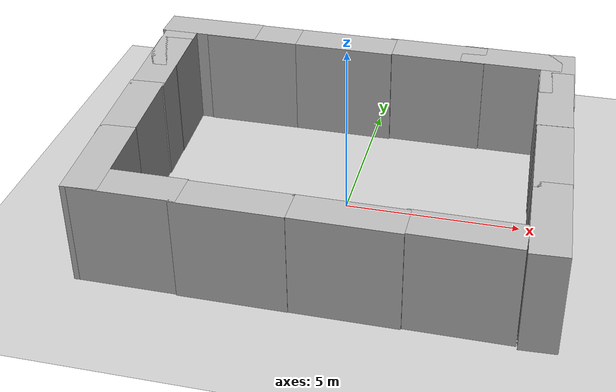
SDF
<sdf version="1.7">
 <world name="default">
  <light name="sun" type="directional">
   <pose>0 0 10 0 -0 0</pose>
   <diffuse>0.8 0.8 0.8 1</diffuse>
   <specular>0.2 0.2 0.2 1</specular>
   <attenuation>
    <range>1000</range>
    <constant>0.9</constant>
    <linear>0.01</linear>
    <quadratic>0.001</quadratic>
   </attenuation>
   <direction>-0.5 0.1 -0.9</direction>
   <spot><inner_angle>0</inner_angle><outer_angle>0</outer_angle><falloff>0</falloff></spot>
  </light>
  <model name="ground_plane">
   <static>1</static>
   <link name="link">
    <collision name="collision">
     <geometry><plane><normal>0 0 1</normal><size>100 100</size></plane></geometry>
     <surface><friction><ode><mu>100</mu><mu2>50</mu2></ode></friction></surface>
    </collision>
    <visual name="visual">
     <cast_shadows>0</cast_shadows>
     <geometry><plane><normal>0 0 1</normal><size>100 100</size></plane></geometry>
     <material>
      <script><uri>file://media/materials/scripts/gazebo.material</uri><name>Gazebo/Grey</name></script>
     </material>
    </visual>
   </link>
  </model>
  <gravity>0 0 -9.8</gravity>
  <magnetic_field>6e-06 2.3e-05 -4.2e-05</magnetic_field>
  <atmosphere type="adiabatic"/>
  <physics type="ode">
   <max_step_size>0.001</max_step_size>
   <real_time_factor>1</real_time_factor>
   <real_time_update_rate>1000</real_time_update_rate>
  </physics>
  <scene><ambient>0.4 0.4 0.4 1</ambient><background>0.7 0.7 0.7 1</background><shadows>1</shadows></scene>
  <spherical_coordinates>
   <surface_model>EARTH_WGS84</surface_model>
   <latitude_deg>0</latitude_deg>
   <longitude_deg>0</longitude_deg>
   <elevation>0</elevation>
   <heading_deg>0</heading_deg>
  </spherical_coordinates>
  <model name="brick_box_3x1x3">
   <static>1</static>
   <link name="chassis">
    <pose>0 0 1.5 0 -0 0</pose>
    <collision name="collision"><geometry><box><size>3 1 3</size></box></geometry></collision>
    <visual name="visual">
     <geometry><mesh><uri>model://brick_box_3x1x3/meshes/simple_box.dae</uri><scale>3 1 3</scale></mesh></geometry>
     <material>
      <script>
       <uri>model://brick_box_3x1x3/materials/scripts</uri>
       <uri>model://brick_box_3x1x3/materials/textures</uri>
       <name>BrickBox/Diffuse</name>
      </script>
     </material>
    </visual>
   </link>
   <pose>0.999896 -4.36214 0 0 -0 0</pose>
  </model>
  <model name="brick_box_3x1x3_clone">
   <static>1</static>
   <link name="chassis">
    <pose>0 0 1.5 0 -0 0</pose>
    <collision name="collision"><geometry><box><size>3 1 3</size></box></geometry></collision>
    <visual name="visual">
     <geometry><mesh><uri>model://brick_box_3x1x3/meshes/simple_box.dae</uri><scale>3 1 3</scale></mesh></geometry>
     <material>
      <script>
       <uri>model://brick_box_3x1x3/materials/scripts</uri>
       <uri>model://brick_box_3x1x3/materials/textures</uri>
       <name>BrickBox/Diffuse</name>
      </script>
     </material>
    </visual>
   </link>
   <pose>-1.93508 -4.37245 0 0 -0 0</pose>
  </model>
  <model name="brick_box_3x1x3_clone_0">
   <static>1</static>
   <link name="chassis">
    <pose>0 0 1.5 0 -0 0</pose>
    <collision name="collision"><geometry><box><size>3 1 3</size></box></geometry></collision>
    <visual name="visual">
     <geometry><mesh><uri>model://brick_box_3x1x3/meshes/simple_box.dae</uri><scale>3 1 3</scale></mesh></geometry>
     <material>
      <script>
       <uri>model://brick_box_3x1x3/materials/scripts</uri>
       <uri>model://brick_box_3x1x3/materials/textures</uri>
       <name>BrickBox/Diffuse</name>
      </script>
     </material>
    </visual>
   </link>
   <pose>-4.73271 -4.33758 0 0 -0 0</pose>
  </model>
  <model name="brick_box_3x1x3_clone_1">
   <static>1</static>
   <link name="chassis">
    <pose>0 0 1.5 0 -0 0</pose>
    <collision name="collision"><geometry><box><size>3 1 3</size></box></geometry></collision>
    <visual name="visual">
     <geometry><mesh><uri>model://brick_box_3x1x3/meshes/simple_box.dae</uri><scale>3 1 3</scale></mesh></geometry>
     <material>
      <script>
       <uri>model://brick_box_3x1x3/materials/scripts</uri>
       <uri>model://brick_box_3x1x3/materials/textures</uri>
       <name>BrickBox/Diffuse</name>
      </script>
     </material>
    </visual>
   </link>
   <pose>3.87327 -4.32497 0 0 -0 0</pose>
  </model>
  <model name="brick_box_3x1x3_clone_2">
   <static>1</static>
   <link name="chassis">
    <pose>0 0 1.5 0 -0 0</pose>
    <collision name="collision"><geometry><box><size>3 1 3</size></box></geometry></collision>
    <visual name="visual">
     <geometry><mesh><uri>model://brick_box_3x1x3/meshes/simple_box.dae</uri><scale>3 1 3</scale></mesh></geometry>
     <material>
      <script>
       <uri>model://brick_box_3x1x3/materials/scripts</uri>
       <uri>model://brick_box_3x1x3/materials/textures</uri>
       <name>BrickBox/Diffuse</name>
      </script>
     </material>
    </visual>
   </link>
   <pose>-0.989825 4.35374 0 0 -0 0</pose>
  </model>
  <model name="brick_box_3x1x3_clone_3">
   <static>1</static>
   <link name="chassis">
    <pose>0 0 1.5 0 -0 0</pose>
    <collision name="collision"><geometry><box><size>3 1 3</size></box></geometry></collision>
    <visual name="visual">
     <geometry><mesh><uri>model://brick_box_3x1x3/meshes/simple_box.dae</uri><scale>3 1 3</scale></mesh></geometry>
     <material>
      <script>
       <uri>model://brick_box_3x1x3/materials/scripts</uri>
       <uri>model://brick_box_3x1x3/materials/textures</uri>
       <name>BrickBox/Diffuse</name>
      </script>
     </material>
    </visual>
   </link>
   <pose>1.80548 4.39993 0 0 -0 0</pose>
  </model>
  <model name="brick_box_3x1x3_clone_4">
   <static>1</static>
   <link name="chassis">
    <pose>0 0 1.5 0 -0 0</pose>
    <collision name="collision"><geometry><box><size>3 1 3</size></box></geometry></collision>
    <visual name="visual">
     <geometry><mesh><uri>model://brick_box_3x1x3/meshes/simple_box.dae</uri><scale>3 1 3</scale></mesh></geometry>
     <material>
      <script>
       <uri>model://brick_box_3x1x3/materials/scripts</uri>
       <uri>model://brick_box_3x1x3/materials/textures</uri>
       <name>BrickBox/Diffuse</name>
      </script>
     </material>
    </visual>
   </link>
   <pose>4.08732 4.42645 0 0 -0 0</pose>
  </model>
  <model name="brick_box_3x1x3_clone_5">
   <static>1</static>
   <link name="chassis">
    <pose>0 0 1.5 0 -0 0</pose>
    <collision name="collision"><geometry><box><size>3 1 3</size></box></geometry></collision>
    <visual name="visual">
     <geometry><mesh><uri>model://brick_box_3x1x3/meshes/simple_box.dae</uri><scale>3 1 3</scale></mesh></geometry>
     <material>
      <script>
       <uri>model://brick_box_3x1x3/materials/scripts</uri>
       <uri>model://brick_box_3x1x3/materials/textures</uri>
       <name>BrickBox/Diffuse</name>
      </script>
     </material>
    </visual>
   </link>
   <pose>-3.82791 4.35381 0 0 -0 0</pose>
  </model>
  <model name="brick_box_3x1x3_clone_4_clone_clone">
   <static>1</static>
   <link name="chassis">
    <pose>0 0 1.5 0 -0 0</pose>
    <collision name="collision"><geometry><box><size>3 1 3</size></box></geometry></collision>
    <visual name="visual">
     <geometry><mesh><uri>model://brick_box_3x1x3/meshes/simple_box.dae</uri><scale>3 1 3</scale></mesh></geometry>
     <material>
      <script>
       <uri>model://brick_box_3x1x3/materials/scripts</uri>
       <uri>model://brick_box_3x1x3/materials/textures</uri>
       <name>BrickBox/Diffuse</name>
      </script>
     </material>
    </visual>
   </link>
   <pose>5.8327 -3.4101 0 0 0 -1.52218</pose>
  </model>
  <model name="brick_box_3x1x3_clone_4_clone_clone_0">
   <static>1</static>
   <link name="chassis">
    <pose>0 0 1.5 0 -0 0</pose>
    <collision name="collision"><geometry><box><size>3 1 3</size></box></geometry></collision>
    <visual name="visual">
     <geometry><mesh><uri>model://brick_box_3x1x3/meshes/simple_box.dae</uri><scale>3 1 3</scale></mesh></geometry>
     <material>
      <script>
       <uri>model://brick_box_3x1x3/materials/scripts</uri>
       <uri>model://brick_box_3x1x3/materials/textures</uri>
       <name>BrickBox/Diffuse</name>
      </script>
     </material>
    </visual>
   </link>
   <pose>5.70434 -0.667921 0 0 0 -1.52218</pose>
  </model>
  <model name="brick_box_3x1x3_clone_4_clone_clone_0_clone">
   <static>1</static>
   <link name="chassis">
    <pose>0 0 1.5 0 -0 0</pose>
    <collision name="collision"><geometry><box><size>3 1 3</size></box></geometry></collision>
    <visual name="visual">
     <geometry><mesh><uri>model://brick_box_3x1x3/meshes/simple_box.dae</uri><scale>3 1 3</scale></mesh></geometry>
     <material>
      <script>
       <uri>model://brick_box_3x1x3/materials/scripts</uri>
       <uri>model://brick_box_3x1x3/materials/textures</uri>
       <name>BrickBox/Diffuse</name>
      </script>
     </material>
    </visual>
   </link>
   <pose>5.53708 2.33134 0 0 0 -1.52218</pose>
  </model>
  <model name="brick_box_3x1x3_clone_4_clone_clone_0_clone_0">
   <static>1</static>
   <link name="chassis">
    <pose>0 0 1.5 0 -0 0</pose>
    <collision name="collision"><geometry><box><size>3 1 3</size></box></geometry></collision>
    <visual name="visual">
     <geometry><mesh><uri>model://brick_box_3x1x3/meshes/simple_box.dae</uri><scale>3 1 3</scale></mesh></geometry>
     <material>
      <script>
       <uri>model://brick_box_3x1x3/materials/scripts</uri>
       <uri>model://brick_box_3x1x3/materials/textures</uri>
       <name>BrickBox/Diffuse</name>
      </script>
     </material>
    </visual>
   </link>
   <pose>5.50541 3.44094 0 0 0 -1.52218</pose>
  </model>
  <model name="brick_box_3x1x3_clone_4_clone_clone_0_clone_1">
   <static>1</static>
   <link name="chassis">
    <pose>0 0 1.5 0 -0 0</pose>
    <collision name="collision"><geometry><box><size>3 1 3</size></box></geometry></collision>
    <visual name="visual">
     <geometry><mesh><uri>model://brick_box_3x1x3/meshes/simple_box.dae</uri><scale>3 1 3</scale></mesh></geometry>
     <material>
      <script>
       <uri>model://brick_box_3x1x3/materials/scripts</uri>
       <uri>model://brick_box_3x1x3/materials/textures</uri>
       <name>BrickBox/Diffuse</name>
      </script>
     </material>
    </visual>
   </link>
   <pose>-5.87728 -3.32254 0 0 0 -1.52218</pose>
  </model>
  <model name="brick_box_3x1x3_clone_4_clone_clone_0_clone_2">
   <static>1</static>
   <link name="chassis">
    <pose>0 0 1.5 0 -0 0</pose>
    <collision name="collision"><geometry><box><size>3 1 3</size></box></geometry></collision>
    <visual name="visual">
     <geometry><mesh><uri>model://brick_box_3x1x3/meshes/simple_box.dae</uri><scale>3 1 3</scale></mesh></geometry>
     <material>
      <script>
       <uri>model://brick_box_3x1x3/materials/scripts</uri>
       <uri>model://brick_box_3x1x3/materials/textures</uri>
       <name>BrickBox/Diffuse</name>
      </script>
     </material>
    </visual>
   </link>
   <pose>-6.00665 -0.829563 0 0 0 -1.52218</pose>
  </model>
  <model name="brick_box_3x1x3_clone_4_clone_clone_0_clone_3">
   <static>1</static>
   <link name="chassis">
    <pose>0 0 1.5 0 -0 0</pose>
    <collision name="collision"><geometry><box><size>3 1 3</size></box></geometry></collision>
    <visual name="visual">
     <geometry><mesh><uri>model://brick_box_3x1x3/meshes/simple_box.dae</uri><scale>3 1 3</scale></mesh></geometry>
     <material>
      <script>
       <uri>model://brick_box_3x1x3/materials/scripts</uri>
       <uri>model://brick_box_3x1x3/materials/textures</uri>
       <name>BrickBox/Diffuse</name>
      </script>
     </material>
    </visual>
   </link>
   <pose>-6.10704 1.9565 0 0 0 -1.52218</pose>
  </model>
  <model name="brick_box_3x1x3_clone_5_clone">
   <static>1</static>
   <link name="chassis">
    <pose>0 0 1.5 0 -0 0</pose>
    <collision name="collision"><geometry><box><size>3 1 3</size></box></geometry></collision>
    <visual name="visual">
     <geometry><mesh><uri>model://brick_box_3x1x3/meshes/simple_box.dae</uri><scale>3 1 3</scale></mesh></geometry>
     <material>
      <script>
       <uri>model://brick_box_3x1x3/materials/scripts</uri>
       <uri>model://brick_box_3x1x3/materials/textures</uri>
       <name>BrickBox/Diffuse</name>
      </script>
     </material>
    </visual>
   </link>
   <pose>-5.30154 4.38069 0 0 -0 0</pose>
  </model>
  <model name="brick_box_3x1x3_clone_4_clone_clone_0_clone_3_clone">
   <static>1</static>
   <link name="chassis">
    <pose>0 0 1.5 0 -0 0</pose>
    <collision name="collision"><geometry><box><size>3 1 3</size></box></geometry></collision>
    <visual name="visual">
     <geometry><mesh><uri>model://brick_box_3x1x3/meshes/simple_box.dae</uri><scale>3 1 3</scale></mesh></geometry>
     <material>
      <script>
       <uri>model://brick_box_3x1x3/materials/scripts</uri>
       <uri>model://brick_box_3x1x3/materials/textures</uri>
       <name>BrickBox/Diffuse</name>
      </script>
     </material>
    </visual>
   </link>
   <pose>-6.15371 3.21154 0 0 0 -1.52218</pose>
  </model>
 </world>
</sdf>
